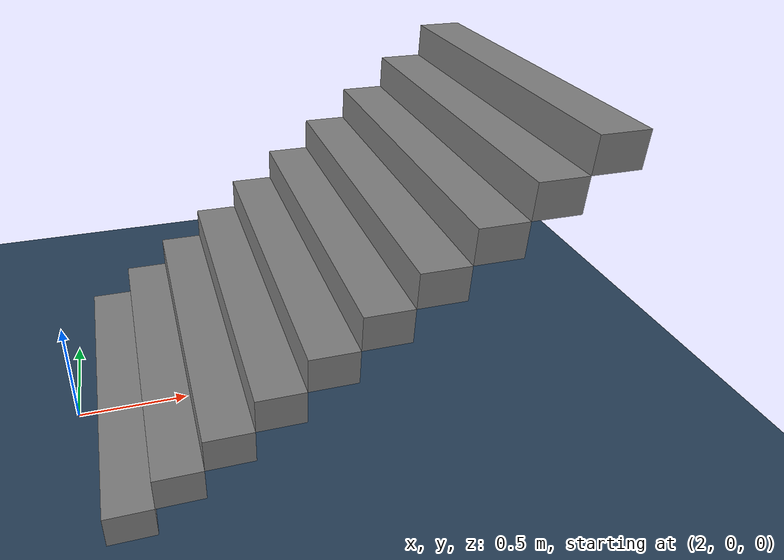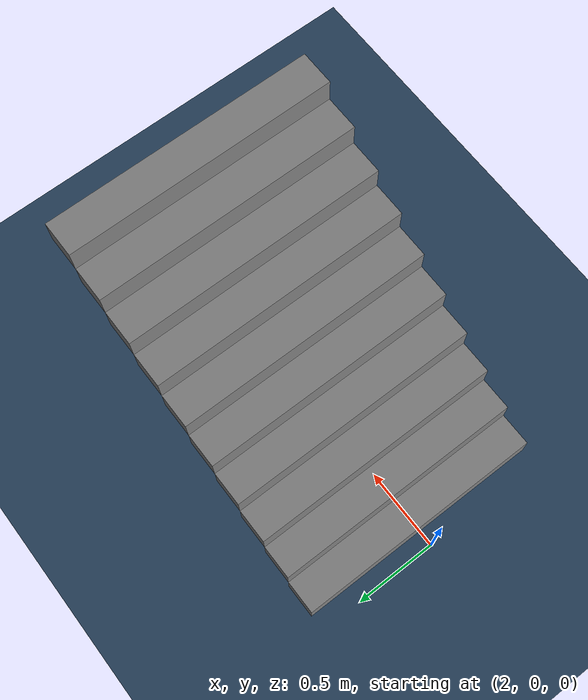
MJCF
<mujoco model="sai_gym_env">
    <statistic center="0.3 0 0.35" extent="0.8" meansize="0.05" />
    <compiler angle="radian" autolimits="true" />
    <option integrator="implicitfast" />

    <visual>
        <global offwidth="2560" offheight="1920" />
        <quality shadowsize="4096" offsamples="8" />
        <map force="0.1" fogend="5" />
        <headlight diffuse="0.6 0.6 0.6" ambient="0.3 0.3 0.3" specular="0 0 0" />
        <rgba haze="0.15 0.25 0.35 1" />
        <scale contactwidth="0.075" contactheight="0.025" forcewidth="0.05" com="0.05" framewidth="0.01" framelength="0.2" />
    </visual>

    <asset>
        <texture type="skybox" builtin="gradient" rgb1="0.3 0.5 0.7" rgb2="0 0 0" width="512" height="3072" />
        <texture type="2d" name="groundplane" builtin="checker" mark="edge" rgb1="0.2 0.3 0.4" rgb2="0.1 0.2 0.3" markrgb="0.8 0.8 0.8" width="300" height="300" />
        <material name="groundplane" texture="groundplane" texuniform="true" texrepeat="5 5" reflectance="0.2" />
    </asset>

    <worldbody>
        <light pos="0 0 1.5" dir="0 0 -1" directional="true" />

        <body name="floor">
			<geom contype="1" conaffinity="2" friction=".1 0.005 0.0001" name="floor" pos="0 0 0" size="0 0 .25" type="plane" material="groundplane" condim="3" solimp="0 0.95 0.001 0.5 2" solref="0.02 1" margin="0" />
		</body>
        <camera name="main_cam" pos="1.834 1.700 1.927" xyaxes="-0.742 0.670 -0.000 -0.380 -0.421 0.823" />

    <geom pos="2.2 0.0 0.075" type="box" size="0.1 0.75 0.075" quat="1.0 0.0 0.0 0.0" /><geom pos="2.4 0.0 0.22499999999999998" type="box" size="0.1 0.75 0.075" quat="1.0 0.0 0.0 0.0" /><geom pos="2.6 0.0 0.375" type="box" size="0.1 0.75 0.075" quat="1.0 0.0 0.0 0.0" /><geom pos="2.8 0.0 0.525" type="box" size="0.1 0.75 0.075" quat="1.0 0.0 0.0 0.0" /><geom pos="3.0 0.0 0.675" type="box" size="0.1 0.75 0.075" quat="1.0 0.0 0.0 0.0" /><geom pos="3.2 0.0 0.8250000000000001" type="box" size="0.1 0.75 0.075" quat="1.0 0.0 0.0 0.0" /><geom pos="3.4 0.0 0.9750000000000001" type="box" size="0.1 0.75 0.075" quat="1.0 0.0 0.0 0.0" /><geom pos="3.5999999999999996 0.0 1.125" type="box" size="0.1 0.75 0.075" quat="1.0 0.0 0.0 0.0" /><geom pos="3.8 0.0 1.275" type="box" size="0.1 0.75 0.075" quat="1.0 0.0 0.0 0.0" /><geom pos="4.0 0.0 1.4249999999999998" type="box" size="0.1 0.75 0.075" quat="1.0 0.0 0.0 0.0" /></worldbody>
</mujoco>
